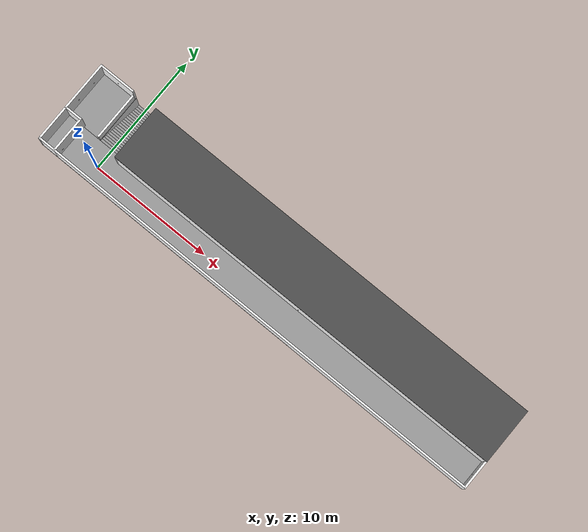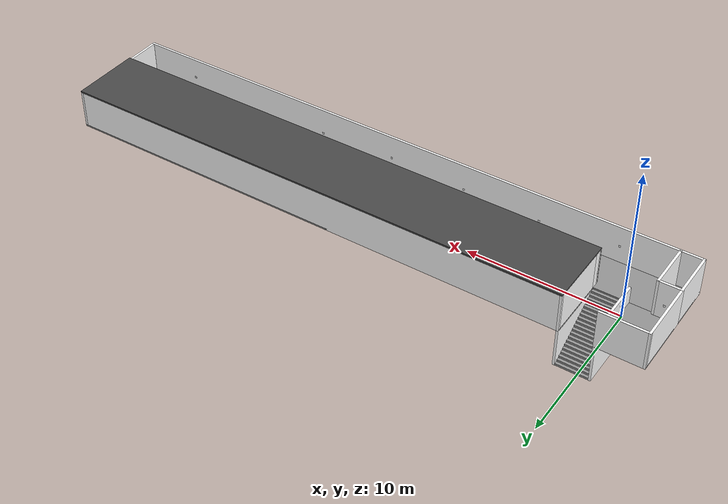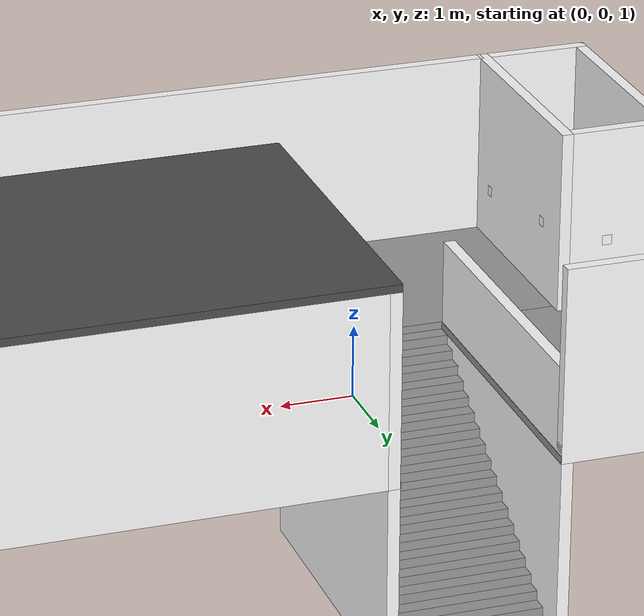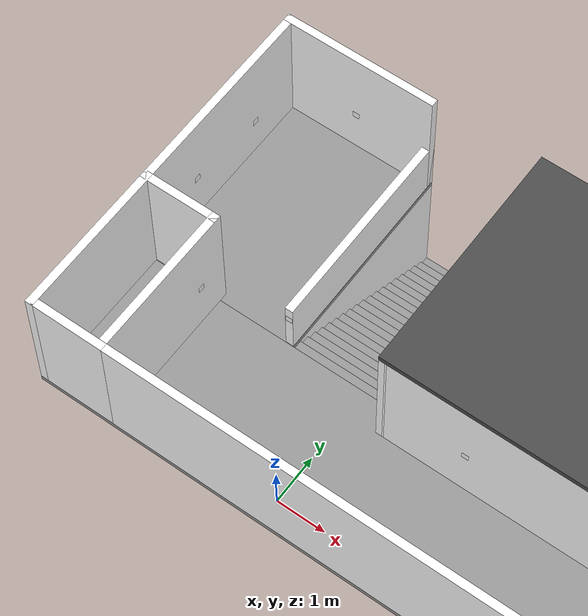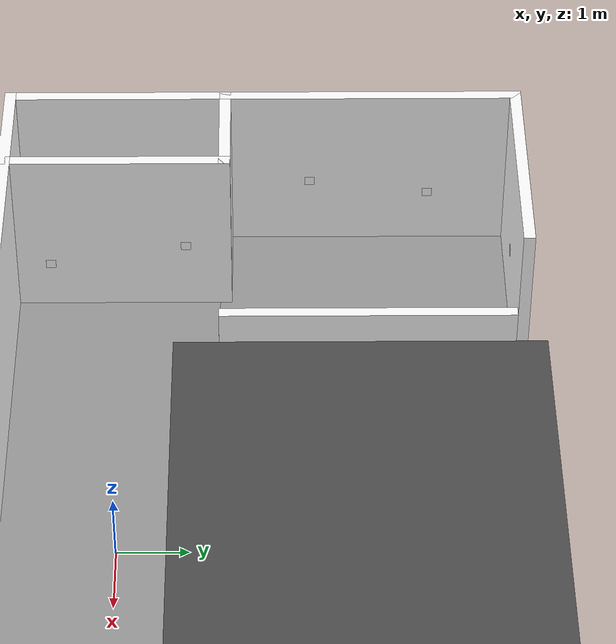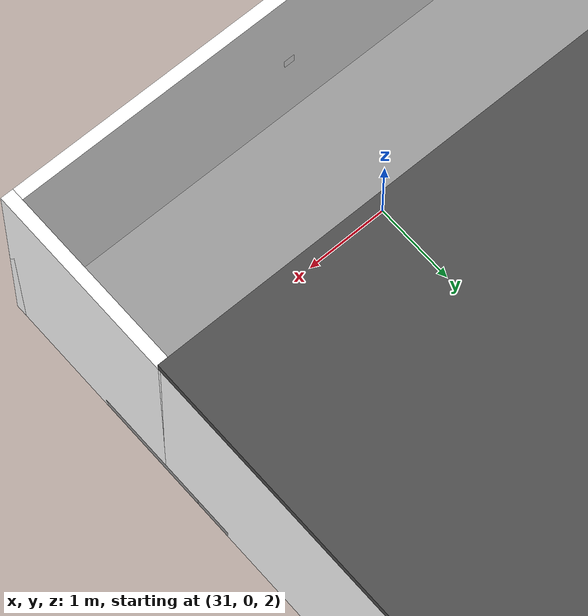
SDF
<?xml version='1.0'?>
<sdf version='1.7'>
  <model name='FRosT_Flur'>
    <pose>15.5 2 0 0 0 1.57</pose>
    <link name='AR_Tag_1'>
      <collision name='AR_Tag_1_Collision'>
        <geometry>
          <box>
            <size>0 0.13 0.13</size>
          </box>
        </geometry>
        <pose>0 0 0 0 -0 0</pose>
      </collision>
      <visual name='AR_Tag_1_Visual'>
        <pose>0 0 0 0 -0 0</pose>
        <geometry>
          <box>
            <size>0 0.13 0.13</size>
          </box>
        </geometry>
        <material>
          <script>
            <name>AR_Tag</name>
          </script>
          <ambient>1 1 1 1</ambient>
        </material>
        <meta>
          <layer>0</layer>
        </meta>
      </visual>
      <pose relative_to="Wall_1">
        0 0.080 1 0 0 1.57
      </pose>
    </link>
    <link name='AR_Tag_2'>
      <collision name='AR_Tag_2_Collision'>
        <geometry>
          <box>
            <size>0 0.13 0.13</size>
          </box>
        </geometry>
        <pose>0 0 0 0 -0 0</pose>
      </collision>
      <visual name='AR_Tag_2_Visual'>
        <pose>0 0 0 0 -0 0</pose>
        <geometry>
          <box>
            <size>0 0.13 0.13</size>
          </box>
        </geometry>
        <material>
          <script>
            <name>AR_Tag</name>
          </script>
          <ambient>1 1 1 1</ambient>
        </material>
        <meta>
          <layer>0</layer>
        </meta>
      </visual>
      <pose relative_to="Wall_1">
        -5 0.080 0.8 0 0 1.57
      </pose>
    </link>
    <link name='AR_Tag_3'>
      <collision name='AR_Tag_3_Collision'>
        <geometry>
          <box>
            <size>0 0.13 0.13</size>
          </box>
        </geometry>
        <pose>0 0 0 0 -0 0</pose>
      </collision>
      <visual name='AR_Tag_3_Visual'>
        <pose>0 0 0 0 -0 0</pose>
        <geometry>
          <box>
            <size>0 0.13 0.13</size>
          </box>
        </geometry>
        <material>
          <script>
            <name>AR_Tag</name>
          </script>
          <ambient>1 1 1 1</ambient>
        </material>
        <meta>
          <layer>0</layer>
        </meta>
      </visual>
      <pose relative_to="Wall_1">
        5 0.080 0.8 0 0 1.57
      </pose>
    </link>
        <link name='AR_Tag_4'>
      <collision name='AR_Tag_4_Collision'>
        <geometry>
          <box>
            <size>0 0.13 0.13</size>
          </box>
        </geometry>
        <pose>0 0 0 0 -0 0</pose>
      </collision>
      <visual name='AR_Tag_4_Visual'>
        <pose>0 0 0 0 -0 0</pose>
        <geometry>
          <box>
            <size>0 0.13 0.13</size>
          </box>
        </geometry>
        <material>
          <script>
            <name>AR_Tag</name>
          </script>
          <ambient>1 1 1 1</ambient>
        </material>
        <meta>
          <layer>0</layer>
        </meta>
      </visual>
      <pose relative_to="Wall_1">
        10 0.080 0.5 0 0 1.57
      </pose>
    </link>
    <link name='AR_Tag_5'>
      <collision name='AR_Tag_5_Collision'>
        <geometry>
          <box>
            <size>0 0.13 0.13</size>
          </box>
        </geometry>
        <pose>0 0 0 0 -0 0</pose>
      </collision>
      <visual name='AR_Tag_5_Visual'>
        <pose>0 0 0 0 -0 0</pose>
        <geometry>
          <box>
            <size>0 0.13 0.13</size>
          </box>
        </geometry>
        <material>
          <script>
            <name>AR_Tag</name>
          </script>
          <ambient>1 1 1 1</ambient>
        </material>
        <meta>
          <layer>0</layer>
        </meta>
      </visual>
      <pose relative_to="Wall_1">
        -10 0.080 0.7 0 0 1.57
      </pose>
    </link>
    <link name='AR_Tag_6'>
      <collision name='AR_Tag_6_Collision'>
        <geometry>
          <box>
            <size>0 0.13 0.13</size>
          </box>
        </geometry>
        <pose>0 0 0 0 -0 0</pose>
      </collision>
      <visual name='AR_Tag_6_Visual'>
        <pose>0 0 0 0 -0 0</pose>
        <geometry>
          <box>
            <size>0 0.13 0.13</size>
          </box>
        </geometry>
        <material>
          <script>
            <name>AR_Tag</name>
          </script>
          <ambient>1 1 1 1</ambient>
        </material>
        <meta>
          <layer>0</layer>
        </meta>
      </visual>
      <pose relative_to="Wall_1">
        -15 0.080 1.2 0 0 1.57
      </pose>
    </link>
    <link name='AR_Tag_7'>
      <collision name='AR_Tag_7_Collision'>
        <geometry>
          <box>
            <size>0 0.13 0.13</size>
          </box>
        </geometry>
        <pose>0 0 0 0 -0 0</pose>
      </collision>
      <visual name='AR_Tag_7_Visual'>
        <pose>0 0 0 0 -0 0</pose>
        <geometry>
          <box>
            <size>0 0.13 0.13</size>
          </box>
        </geometry>
        <material>
          <script>
            <name>AR_Tag</name>
          </script>
          <ambient>1 1 1 1</ambient>
        </material>
        <meta>
          <layer>0</layer>
        </meta>
      </visual>
      <pose relative_to="Wall_1">
        15 0.080 1.2 0 0 1.57
      </pose>
    </link>
    <link name='AR_Tag_8'>
      <collision name='AR_Tag_8_Collision'>
        <geometry>
          <box>
            <size>0 0.13 0.13</size>
          </box>
        </geometry>
        <pose>0 0 0 0 -0 0</pose>
      </collision>
      <visual name='AR_Tag_8_Visual'>
        <pose>0 0 0 0 -0 0</pose>
        <geometry>
          <box>
            <size>0 0.13 0.13</size>
          </box>
        </geometry>
        <material>
          <script>
            <name>AR_Tag</name>
          </script>
          <ambient>1 1 1 1</ambient>
        </material>
        <meta>
          <layer>0</layer>
        </meta>
      </visual>
      <pose relative_to="Wall_2">
        0 0.080 1 0 0 1.57
      </pose>
    </link>
    <link name='AR_Tag_9'>
      <collision name='AR_Tag_9_Collision'>
        <geometry>
          <box>
            <size>0 0.13 0.13</size>
          </box>
        </geometry>
        <pose>0 0 0 0 -0 0</pose>
      </collision>
      <visual name='AR_Tag_9_Visual'>
        <pose>0 0 0 0 -0 0</pose>
        <geometry>
          <box>
            <size>0 0.13 0.13</size>
          </box>
        </geometry>
        <material>
          <script>
            <name>AR_Tag</name>
          </script>
          <ambient>1 1 1 1</ambient>
        </material>
        <meta>
          <layer>0</layer>
        </meta>
      </visual>
      <pose relative_to="Wall_3">
        0 -0.080 1 0 0 1.57
      </pose>
    </link>
    <link name='AR_Tag_10'>
      <collision name='AR_Tag_10_Collision'>
        <geometry>
          <box>
            <size>0 0.13 0.13</size>
          </box>
        </geometry>
        <pose>0 0 0 0 -0 0</pose>
      </collision>
      <visual name='AR_Tag_10_Visual'>
        <pose>0 0 0 0 -0 0</pose>
        <geometry>
          <box>
            <size>0 0.13 0.13</size>
          </box>
        </geometry>
        <material>
          <script>
            <name>AR_Tag</name>
          </script>
          <ambient>1 1 1 1</ambient>
        </material>
        <meta>
          <layer>0</layer>
        </meta>
      </visual>
      <pose relative_to="Wall_3">
        -5 -0.080 0.8 0 0 1.57
      </pose>
    </link>
    <link name='AR_Tag_11'>
      <collision name='AR_Tag_11_Collision'>
        <geometry>
          <box>
            <size>0 0.13 0.13</size>
          </box>
        </geometry>
        <pose>0 0 0 0 -0 0</pose>
      </collision>
      <visual name='AR_Tag_11_Visual'>
        <pose>0 0 0 0 -0 0</pose>
        <geometry>
          <box>
            <size>0 0.13 0.13</size>
          </box>
        </geometry>
        <material>
          <script>
            <name>AR_Tag</name>
          </script>
          <ambient>1 1 1 1</ambient>
        </material>
        <meta>
          <layer>0</layer>
        </meta>
      </visual>
      <pose relative_to="Wall_3">
        5 -0.080 0.8 0 0 1.57
      </pose>
    </link>
        <link name='AR_Tag_12'>
      <collision name='AR_Tag_12_Collision'>
        <geometry>
          <box>
            <size>0 0.13 0.13</size>
          </box>
        </geometry>
        <pose>0 0 0 0 -0 0</pose>
      </collision>
      <visual name='AR_Tag_12_Visual'>
        <pose>0 0 0 0 -0 0</pose>
        <geometry>
          <box>
            <size>0 0.13 0.13</size>
          </box>
        </geometry>
        <material>
          <script>
            <name>AR_Tag</name>
          </script>
          <ambient>1 1 1 1</ambient>
        </material>
        <meta>
          <layer>0</layer>
        </meta>
      </visual>
      <pose relative_to="Wall_3">
        10 -0.080 0.5 0 0 1.57
      </pose>
    </link>
    <link name='AR_Tag_13'>
      <collision name='AR_Tag_13_Collision'>
        <geometry>
          <box>
            <size>0 0.13 0.13</size>
          </box>
        </geometry>
        <pose>0 0 0 0 -0 0</pose>
      </collision>
      <visual name='AR_Tag_13_Visual'>
        <pose>0 0 0 0 -0 0</pose>
        <geometry>
          <box>
            <size>0 0.13 0.13</size>
          </box>
        </geometry>
        <material>
          <script>
            <name>AR_Tag</name>
          </script>
          <ambient>1 1 1 1</ambient>
        </material>
        <meta>
          <layer>0</layer>
        </meta>
      </visual>
      <pose relative_to="Wall_3">
        -10 -0.080 0.7 0 0 1.57
      </pose>
    </link>
    <link name='AR_Tag_14'>
      <collision name='AR_Tag_14_Collision'>
        <geometry>
          <box>
            <size>0 0.13 0.13</size>
          </box>
        </geometry>
        <pose>0 0 0 0 -0 0</pose>
      </collision>
      <visual name='AR_Tag_14_Visual'>
        <pose>0 0 0 0 -0 0</pose>
        <geometry>
          <box>
            <size>0 0.13 0.13</size>
          </box>
        </geometry>
        <material>
          <script>
            <name>AR_Tag</name>
          </script>
          <ambient>1 1 1 1</ambient>
        </material>
        <meta>
          <layer>0</layer>
        </meta>
      </visual>
      <pose relative_to="Wall_3">
        -15 -0.080 1.2 0 0 1.57
      </pose>
    </link>
    <link name='AR_Tag_15'>
      <collision name='AR_Tag_15_Collision'>
        <geometry>
          <box>
            <size>0 0.13 0.13</size>
          </box>
        </geometry>
        <pose>0 0 0 0 -0 0</pose>
      </collision>
      <visual name='AR_Tag_15_Visual'>
        <pose>0 0 0 0 -0 0</pose>
        <geometry>
          <box>
            <size>0 0.13 0.13</size>
          </box>
        </geometry>
        <material>
          <script>
            <name>AR_Tag</name>
          </script>
          <ambient>1 1 1 1</ambient>
        </material>
        <meta>
          <layer>0</layer>
        </meta>
      </visual>
      <pose relative_to="Wall_3">
        15 -0.080 1.2 0 0 1.57
      </pose>
    </link>
    <link name='AR_Tag_16'>
      <collision name='AR_Tag_16_Collision'>
        <geometry>
          <box>
            <size>0 0.13 0.13</size>
          </box>
        </geometry>
        <pose>0 0 0 0 -0 0</pose>
      </collision>
      <visual name='AR_Tag_16_Visual'>
        <pose>0 0 0 0 -0 0</pose>
        <geometry>
          <box>
            <size>0 0.13 0.13</size>
          </box>
        </geometry>
        <material>
          <script>
            <name>AR_Tag</name>
          </script>
          <ambient>1 1 1 1</ambient>
        </material>
        <meta>
          <layer>0</layer>
        </meta>
      </visual>
      <pose relative_to="Wall_4">
        0.2 -0.080 0.9 0 0 1.57
      </pose>
    </link>
    <link name='AR_Tag_17'>
      <collision name='AR_Tag_17_Collision'>
        <geometry>
          <box>
            <size>0 0.13 0.13</size>
          </box>
        </geometry>
        <pose>0 0 0 0 -0 0</pose>
      </collision>
      <visual name='AR_Tag_17_Visual'>
        <pose>0 0 0 0 -0 0</pose>
        <geometry>
          <box>
            <size>0 0.13 0.13</size>
          </box>
        </geometry>
        <material>
          <script>
            <name>AR_Tag</name>
          </script>
          <ambient>1 1 1 1</ambient>
        </material>
        <meta>
          <layer>0</layer>
        </meta>
      </visual>
      <pose relative_to="Wall_5">
        -2.001 0 0.9 0 0 0
      </pose>
    </link>
    <link name='AR_Tag_18'>
      <collision name='AR_Tag_18_Collision'>
        <geometry>
          <box>
            <size>0 0.13 0.13</size>
          </box>
        </geometry>
        <pose>0 0 0 0 -0 0</pose>
      </collision>
      <visual name='AR_Tag_18_Visual'>
        <pose>0 0 0 0 -0 0</pose>
        <geometry>
          <box>
            <size>0 0.13 0.13</size>
          </box>
        </geometry>
        <material>
          <script>
            <name>AR_Tag</name>
          </script>
          <ambient>1 1 1 1</ambient>
        </material>
        <meta>
          <layer>0</layer>
        </meta>
      </visual>
      <pose relative_to="Wall_5">
        -0.8 0.080 0.8 0 0 1.57
      </pose>
    </link>
    <link name='AR_Tag_19'>
      <collision name='AR_Tag_19_Collision'>
        <geometry>
          <box>
            <size>0 0.13 0.13</size>
          </box>
        </geometry>
        <pose>0 0 0 0 -0 0</pose>
      </collision>
      <visual name='AR_Tag_19_Visual'>
        <pose>0 0 0 0 -0 0</pose>
        <geometry>
          <box>
            <size>0 0.13 0.13</size>
          </box>
        </geometry>
        <material>
          <script>
            <name>AR_Tag</name>
          </script>
          <ambient>1 1 1 1</ambient>
        </material>
        <meta>
          <layer>0</layer>
        </meta>
      </visual>
      <pose relative_to="Wall_5">
        0.8 0.080 0.8 0 0 1.57
      </pose>
    </link>
    <link name='AR_Tag_20'>
      <collision name='AR_Tag_20_Collision'>
        <geometry>
          <box>
            <size>0 0.13 0.13</size>
          </box>
        </geometry>
        <pose>0 0 0 0 -0 0</pose>
      </collision>
      <visual name='AR_Tag_20_Visual'>
        <pose>0 0 0 0 -0 0</pose>
        <geometry>
          <box>
            <size>0 0.13 0.13</size>
          </box>
        </geometry>
        <material>
          <script>
            <name>AR_Tag</name>
          </script>
          <ambient>1 1 1 1</ambient>
        </material>
        <meta>
          <layer>0</layer>
        </meta>
      </visual>
      <pose relative_to="Wall_6">
        0 0.080 1 0 0 1.57
      </pose>
    </link>
    <link name='AR_Tag_21'>
      <collision name='AR_Tag_21_Collision'>
        <geometry>
          <box>
            <size>0 0.13 0.13</size>
          </box>
        </geometry>
        <pose>0 0 0 0 -0 0</pose>
      </collision>
      <visual name='AR_Tag_21_Visual'>
        <pose>0 0 0 0 -0 0</pose>
        <geometry>
          <box>
            <size>0 0.13 0.13</size>
          </box>
        </geometry>
        <material>
          <script>
            <name>AR_Tag</name>
          </script>
          <ambient>1 1 1 1</ambient>
        </material>
        <meta>
          <layer>0</layer>
        </meta>
      </visual>
      <pose relative_to="Wall_7">
        0.8 0.080 1.1 0 0 1.57
      </pose>
    </link>
    <link name='AR_Tag_22'>
      <collision name='AR_Tag_22_Collision'>
        <geometry>
          <box>
            <size>0 0.13 0.13</size>
          </box>
        </geometry>
        <pose>0 0 0 0 -0 0</pose>
      </collision>
      <visual name='AR_Tag_22_Visual'>
        <pose>0 0 0 0 -0 0</pose>
        <geometry>
          <box>
            <size>0 0.13 0.13</size>
          </box>
        </geometry>
        <material>
          <script>
            <name>AR_Tag</name>
          </script>
          <ambient>1 1 1 1</ambient>
        </material>
        <meta>
          <layer>0</layer>
        </meta>
      </visual>
      <pose relative_to="Wall_7">
        -0.8 0.080 0.9 0 0 1.57
      </pose>
    </link>
    <link name='AR_Tag_23'>
      <collision name='AR_Tag_23_Collision'>
        <geometry>
          <box>
            <size>0 0.13 0.13</size>
          </box>
        </geometry>
        <pose>0 0 0 0 -0 0</pose>
      </collision>
      <visual name='AR_Tag_23_Visual'>
        <pose>0 0 0 0 -0 0</pose>
        <geometry>
          <box>
            <size>0 0.13 0.13</size>
          </box>
        </geometry>
        <material>
          <script>
            <name>AR_Tag</name>
          </script>
          <ambient>1 1 1 1</ambient>
        </material>
        <meta>
          <layer>0</layer>
        </meta>
      </visual>
      <pose relative_to="Wall_8">
        0.1 0.080 1 0 0 1.57
      </pose>
    </link>
    <link name='AR_Tag_24'>
      <collision name='AR_Tag_24_Collision'>
        <geometry>
          <box>
            <size>0 0.13 0.13</size>
          </box>
        </geometry>
        <pose>0 0 0 0 -0 0</pose>
      </collision>
      <visual name='AR_Tag_24_Visual'>
        <pose>0 0 0 0 -0 0</pose>
        <geometry>
          <box>
            <size>0 0.13 0.13</size>
          </box>
        </geometry>
        <material>
          <script>
            <name>AR_Tag</name>
          </script>
          <ambient>1 1 1 1</ambient>
        </material>
        <meta>
          <layer>0</layer>
        </meta>
      </visual>
      <pose relative_to="Wall_9">
        0.9 0.080 0.8 0 0 1.57
      </pose>
    </link>
    <link name='AR_Tag_25'>
      <collision name='AR_Tag_25_Collision'>
        <geometry>
          <box>
            <size>0 0.13 0.13</size>
          </box>
        </geometry>
        <pose>0 0 0 0 -0 0</pose>
      </collision>
      <visual name='AR_Tag_25_Visual'>
        <pose>0 0 0 0 -0 0</pose>
        <geometry>
          <box>
            <size>0 0.13 0.13</size>
          </box>
        </geometry>
        <material>
          <script>
            <name>AR_Tag</name>
          </script>
          <ambient>1 1 1 1</ambient>
        </material>
        <meta>
          <layer>0</layer>
        </meta>
      </visual>
      <pose relative_to="Wall_9">
        -0.9 0.080 1.1 0 0 1.57
      </pose>
    </link>
    <link name='Wall_1'>
      <collision name='Wall_1_Collision'>
        <geometry>
          <box>
            <size>37 0.15 2.5</size>
          </box>
        </geometry>
        <pose>0 0 1.25 0 -0 0</pose>
      </collision>
      <visual name='Wall_1_Visual'>
        <pose>0 0 1.25 0 -0 0</pose>
        <geometry>
          <box>
            <size>37 0.15 2.5</size>
          </box>
        </geometry>
        <material>
			 <script>
            <name>Wand_beige</name>
          </script>
          <ambient>1 1 1 1</ambient>
        </material>
        <meta>
          <layer>1</layer>
        </meta>
      </visual>
      <pose>-3.35009 -0.675 2.5 0 -0 -1.5708</pose>
    </link>
    <link name='Wall_2'>
      <collision name='Wall_2_Collision'>
        <geometry>
          <box>
            <size>2.5 0.15 2.5</size>
          </box>
        </geometry>
        <pose>0 0 1.25 0 -0 0</pose>
      </collision>
      <visual name='Wall_2_Visual'>
        <pose>0 0 1.25 0 -0 0</pose>
        <geometry>
          <box>
            <size>2.5 0.15 2.5</size>
          </box>
        </geometry>
        <material>
          <script>
            <name>Wand_beige</name>
          </script>
          <ambient>1 1 1 1</ambient>
        </material>
        <meta>
          <layer>1</layer>
        </meta>
      </visual>
      <pose>-2.17509 -19.1 2.5 0 -0 0</pose>
    </link>
    <link name='Wall_3'>
      <collision name='Wall_3_Collision'>
        <geometry>
          <box>
            <size>33.341 0.15 2.5</size>
          </box>
        </geometry>
        <pose>0 0 1.25 0 -0 0</pose>
      </collision>
      <visual name='Wall_3_Visual'>
        <pose>0 0 1.25 0 -0 0</pose>
        <geometry>
          <box>
            <size>33.341 0.15 2.5</size>
          </box>
        </geometry>
        <material>
          <script>
            <name>Wand_beige</name>
          </script>
          <ambient>1 1 1 1</ambient>
        </material>
        <meta>
          <layer>1</layer>
        </meta>
      </visual>
      <pose>-1.00009 -2.5045 2.5 0 -0 -1.5708</pose>
    </link>
    <link name='Wall_4'>
      <collision name='Wall_4_Collision'>
        <geometry>
          <box>
            <size>0.65 0.15 2.5</size>
          </box>
        </geometry>
        <pose>0 0 1.25 0 -0 0</pose>
      </collision>
      <visual name='Wall_4_Visual'>
        <pose>0 0 1.25 0 -0 0</pose>
        <geometry>
          <box>
            <size>0.65 0.15 2.5</size>
          </box>
        </geometry>
        <material>
          <script>
            <name>Wand_beige</name>
          </script>
          <ambient>1 1 1 1</ambient>
        </material>
        <meta>
          <layer>1</layer>
        </meta>
      </visual>
      <pose>-0.749999 14.0908 2.5 0 -0 3.14087</pose>
    </link>
    <link name='Wall_5'>
      <collision name='Wall_5_Collision'>
        <geometry>
          <box>
            <size>4 0.15 1.2</size>
          </box>
        </geometry>
        <pose>0 0 0.6 0 -0 0</pose>
      </collision>
      <visual name='Wall_5_Visual'>
        <pose>0 0 0.6 0 -0 0</pose>
        <geometry>
          <box>
            <size>4 0.15 1.2</size>
          </box>
        </geometry>
        <material>
          <script>
            <name>Wand_beige</name>
          </script>
          <ambient>1 1 1 1</ambient>
        </material>
        <meta>
          <layer>1</layer>
        </meta>
      </visual>
      <pose>1.42491 16.25 2.5 0 -0 0</pose>
    </link>
    <link name='Wall_6'>
      <collision name='Wall_6_Collision'>
        <geometry>
          <box>
            <size>3 0.15 2.5</size>
          </box>
        </geometry>
        <pose>0 0 1.25 0 -0 0</pose>
      </collision>
      <visual name='Wall_6_Visual'>
        <pose>0 0 1.25 0 -0 0</pose>
        <geometry>
          <box>
            <size>3 0.15 2.5</size>
          </box>
        </geometry>
        <material>
          <script>
            <name>Wand_beige</name>
          </script>
          <ambient>1 1 1 1</ambient>
        </material>
        <meta>
          <layer>1</layer>
        </meta>
      </visual>
      <pose>3.34991 17.675 2.5 0 -0 1.5708</pose>
    </link>
    <link name='Wall_7'>
      <collision name='Wall_7_Collision'>
        <geometry>
          <box>
            <size>4 0.15 2.5</size>
          </box>
        </geometry>
        <pose>0 0 1.25 0 -0 0</pose>
      </collision>
      <visual name='Wall_7_Visual'>
        <pose>0 0 1.25 0 -0 0</pose>
        <geometry>
          <box>
            <size>4 0.15 2.5</size>
          </box>
        </geometry>
        <material>
          <script>
            <name>Wand_beige</name>
          </script>
          <ambient>1 1 1 1</ambient>
        </material>
        <meta>
          <layer>1</layer>
        </meta>
      </visual>
      <pose>1.42491 19.1 2.5 0 -0 3.14159</pose>
    </link>
    <link name='Wall_8'>
      <collision name='Wall_8_Collision'>
        <geometry>
          <box>
            <size>1.5 0.15 2.5</size>
          </box>
        </geometry>
        <pose>0 0 1.25 0 -0 0</pose>
      </collision>
      <visual name='Wall_8_Visual'>
        <pose>0 0 1.25 0 -0 0</pose>
        <geometry>
          <box>
            <size>1.5 0.15 2.5</size>
          </box>
        </geometry>
        <material>
          <script>
            <name>Wand_beige</name>
          </script>
          <ambient>1 1 1 1</ambient>
        </material>
        <meta>
          <layer>1</layer>
        </meta>
      </visual>
      <pose>-0.500093 18.425 2.5 0 -0 -1.5708</pose>
    </link>
    <link name='Wall_9'>
      <collision name='Wall_9_Collision'>
        <geometry>
          <box>
            <size>3 0.15 2.5</size>
          </box>
        </geometry>
        <pose>0 0 1.25 0 -0 0</pose>
      </collision>
      <visual name='Wall_9_Visual'>
        <pose>0 0 1.25 0 -0 0</pose>
        <geometry>
          <box>
            <size>3 0.15 2.5</size>
          </box>
        </geometry>
        <material>
          <script>
            <name>Wand_beige</name>
          </script>
          <ambient>1 1 1 1</ambient>
        </material>
        <meta>
          <layer>1</layer>
        </meta>
      </visual>
      <pose>-1.92509 17.75 2.5 0 -0 3.14159</pose>
    </link>
    <link name='Floor_0'>
      <pose>-9e-05 1e-06 2.5 0 -0 0</pose>
      <visual name='Floor_0_Visual_0'>
        <pose>-2.0038 0 0.05 0 -0 0</pose>
        <geometry>
          <box>
            <size>2.84242 38.35 0.1</size>
          </box>
        </geometry>
        <material>
          <script>
            <uri>file://media/materials/scripts/gazebo.material</uri>
            <name>Gazebo/Grey</name>
          </script>
          <ambient>1 1 1 1</ambient>
        </material>
        <meta>
          <layer>1</layer>
        </meta>
      </visual>
      <collision name='Floor_0_Collision_0'>
        <geometry>
          <box>
            <size>2.84242 38.35 0.1</size>
          </box>
        </geometry>
        <pose>-2.0038 0 0.05 0 -0 0</pose>
      </collision>
      <visual name='Floor_0_Visual_1'>
        <pose>1.42121 -2.502 0.05 0 -0 0</pose>
        <geometry>
          <box>
            <size>4.00759 33.346 0.1</size>
          </box>
        </geometry>
        <material>
          <script>
            <uri>file://media/materials/scripts/gazebo.material</uri>
            <name>Gazebo/Grey</name>
          </script>
          <ambient>1 1 1 1</ambient>
        </material>
        <meta>
          <layer>1</layer>
        </meta>
      </visual>
      <collision name='Floor_0_Collision_1'>
        <geometry>
          <box>
            <size>4.00759 33.346 0.1</size>
          </box>
        </geometry>
        <pose>1.42121 -2.502 0.05 0 -0 0</pose>
      </collision>
      <visual name='Floor_0_Visual_3'>
        <pose>1.41741 17.673 0.05 0 -0 0</pose>
        <geometry>
          <box>
            <size>4 3.004 0.1</size>
          </box>
        </geometry>
        <material>
          <script>
            <uri>file://media/materials/scripts/gazebo.material</uri>
            <name>Gazebo/Grey</name>
          </script>
          <ambient>1 1 1 1</ambient>
        </material>
        <meta>
          <layer>1</layer>
        </meta>
      </visual>
      <collision name='Floor_0_Collision_3'>
        <geometry>
          <box>
            <size>4 3.004 0.1</size>
          </box>
        </geometry>
        <pose>1.41741 17.673 0.05 0 -0 0</pose>
      </collision>
    </link>
    <link name='Floor_2'>
      <collision name='Floor_2_Collision'>
        <geometry>
          <box>
            <size>4.5 33.341 0.1</size>
          </box>
        </geometry>
        <pose>0 0 0.05 0 -0 0</pose>
      </collision>
      <visual name='Floor_2_Visual'>
        <pose>0 0 0.05 0 -0 0</pose>
        <geometry>
          <box>
            <size>4.5 33.341 0.1</size>
          </box>
        </geometry>
        <material>
          <script>
            <uri>file://media/materials/scripts/gazebo.material</uri>
            <name>Gazebo/DarkGrey</name>
          </script>
          <ambient>1 1 1 1</ambient>
        </material>
        <meta>
          <layer>2</layer>
        </meta>
      </visual>
      <pose>1.17491 -2.5045 5 0 -0 0</pose>
    </link>
    <link name='Stairs_3'>
      <visual name='Stairs_3_Visual_0'>
        <pose>3.31732 15.171 0.0625 0 0 -1.5708</pose>
        <geometry>
          <box>
            <size>2 0.2 0.125</size>
          </box>
        </geometry>
        <material>
          <script>
            <uri>file://media/materials/scripts/gazebo.material</uri>
            <name>Gazebo/Grey</name>
          </script>
          <ambient>1 1 1 1</ambient>
        </material>
        <meta>
          <layer>0</layer>
        </meta>
      </visual>
      <collision name='Stairs_3_Collision_0'>
        <geometry>
          <box>
            <size>2 0.2 0.125</size>
          </box>
        </geometry>
        <pose>3.31732 15.171 0.0625 0 0 -1.5708</pose>
      </collision>
      <visual name='Stairs_3_Visual_1'>
        <pose>3.11732 15.171 0.1875 0 0 -1.5708</pose>
        <geometry>
          <box>
            <size>2 0.2 0.125</size>
          </box>
        </geometry>
        <material>
          <script>
            <uri>file://media/materials/scripts/gazebo.material</uri>
            <name>Gazebo/Grey</name>
          </script>
          <ambient>1 1 1 1</ambient>
        </material>
        <meta>
          <layer>0</layer>
        </meta>
      </visual>
      <collision name='Stairs_3_Collision_1'>
        <geometry>
          <box>
            <size>2 0.2 0.125</size>
          </box>
        </geometry>
        <pose>3.11732 15.171 0.1875 0 0 -1.5708</pose>
      </collision>
      <visual name='Stairs_3_Visual_2'>
        <pose>2.91732 15.171 0.3125 0 0 -1.5708</pose>
        <geometry>
          <box>
            <size>2 0.2 0.125</size>
          </box>
        </geometry>
        <material>
          <script>
            <uri>file://media/materials/scripts/gazebo.material</uri>
            <name>Gazebo/Grey</name>
          </script>
          <ambient>1 1 1 1</ambient>
        </material>
        <meta>
          <layer>0</layer>
        </meta>
      </visual>
      <collision name='Stairs_3_Collision_2'>
        <geometry>
          <box>
            <size>2 0.2 0.125</size>
          </box>
        </geometry>
        <pose>2.91732 15.171 0.3125 0 0 -1.5708</pose>
      </collision>
      <visual name='Stairs_3_Visual_3'>
        <pose>2.71732 15.171 0.4375 0 0 -1.5708</pose>
        <geometry>
          <box>
            <size>2 0.2 0.125</size>
          </box>
        </geometry>
        <material>
          <script>
            <uri>file://media/materials/scripts/gazebo.material</uri>
            <name>Gazebo/Grey</name>
          </script>
          <ambient>1 1 1 1</ambient>
        </material>
        <meta>
          <layer>0</layer>
        </meta>
      </visual>
      <collision name='Stairs_3_Collision_3'>
        <geometry>
          <box>
            <size>2 0.2 0.125</size>
          </box>
        </geometry>
        <pose>2.71732 15.171 0.4375 0 0 -1.5708</pose>
      </collision>
      <visual name='Stairs_3_Visual_4'>
        <pose>2.51732 15.171 0.5625 0 0 -1.5708</pose>
        <geometry>
          <box>
            <size>2 0.2 0.125</size>
          </box>
        </geometry>
        <material>
          <script>
            <uri>file://media/materials/scripts/gazebo.material</uri>
            <name>Gazebo/Grey</name>
          </script>
          <ambient>1 1 1 1</ambient>
        </material>
        <meta>
          <layer>0</layer>
        </meta>
      </visual>
      <collision name='Stairs_3_Collision_4'>
        <geometry>
          <box>
            <size>2 0.2 0.125</size>
          </box>
        </geometry>
        <pose>2.51732 15.171 0.5625 0 0 -1.5708</pose>
      </collision>
      <visual name='Stairs_3_Visual_5'>
        <pose>2.31732 15.171 0.6875 0 0 -1.5708</pose>
        <geometry>
          <box>
            <size>2 0.2 0.125</size>
          </box>
        </geometry>
        <material>
          <script>
            <uri>file://media/materials/scripts/gazebo.material</uri>
            <name>Gazebo/Grey</name>
          </script>
          <ambient>1 1 1 1</ambient>
        </material>
        <meta>
          <layer>0</layer>
        </meta>
      </visual>
      <collision name='Stairs_3_Collision_5'>
        <geometry>
          <box>
            <size>2 0.2 0.125</size>
          </box>
        </geometry>
        <pose>2.31732 15.171 0.6875 0 0 -1.5708</pose>
      </collision>
      <visual name='Stairs_3_Visual_6'>
        <pose>2.11732 15.171 0.8125 0 0 -1.5708</pose>
        <geometry>
          <box>
            <size>2 0.2 0.125</size>
          </box>
        </geometry>
        <material>
          <script>
            <uri>file://media/materials/scripts/gazebo.material</uri>
            <name>Gazebo/Grey</name>
          </script>
          <ambient>1 1 1 1</ambient>
        </material>
        <meta>
          <layer>0</layer>
        </meta>
      </visual>
      <collision name='Stairs_3_Collision_6'>
        <geometry>
          <box>
            <size>2 0.2 0.125</size>
          </box>
        </geometry>
        <pose>2.11732 15.171 0.8125 0 0 -1.5708</pose>
      </collision>
      <visual name='Stairs_3_Visual_7'>
        <pose>1.91732 15.171 0.9375 0 0 -1.5708</pose>
        <geometry>
          <box>
            <size>2 0.2 0.125</size>
          </box>
        </geometry>
        <material>
          <script>
            <uri>file://media/materials/scripts/gazebo.material</uri>
            <name>Gazebo/Grey</name>
          </script>
          <ambient>1 1 1 1</ambient>
        </material>
        <meta>
          <layer>0</layer>
        </meta>
      </visual>
      <collision name='Stairs_3_Collision_7'>
        <geometry>
          <box>
            <size>2 0.2 0.125</size>
          </box>
        </geometry>
        <pose>1.91732 15.171 0.9375 0 0 -1.5708</pose>
      </collision>
      <visual name='Stairs_3_Visual_8'>
        <pose>1.71732 15.171 1.0625 0 0 -1.5708</pose>
        <geometry>
          <box>
            <size>2 0.2 0.125</size>
          </box>
        </geometry>
        <material>
          <script>
            <uri>file://media/materials/scripts/gazebo.material</uri>
            <name>Gazebo/Grey</name>
          </script>
          <ambient>1 1 1 1</ambient>
        </material>
        <meta>
          <layer>0</layer>
        </meta>
      </visual>
      <collision name='Stairs_3_Collision_8'>
        <geometry>
          <box>
            <size>2 0.2 0.125</size>
          </box>
        </geometry>
        <pose>1.71732 15.171 1.0625 0 0 -1.5708</pose>
      </collision>
      <visual name='Stairs_3_Visual_9'>
        <pose>1.51732 15.171 1.1875 0 0 -1.5708</pose>
        <geometry>
          <box>
            <size>2 0.2 0.125</size>
          </box>
        </geometry>
        <material>
          <script>
            <uri>file://media/materials/scripts/gazebo.material</uri>
            <name>Gazebo/Grey</name>
          </script>
          <ambient>1 1 1 1</ambient>
        </material>
        <meta>
          <layer>0</layer>
        </meta>
      </visual>
      <collision name='Stairs_3_Collision_9'>
        <geometry>
          <box>
            <size>2 0.2 0.125</size>
          </box>
        </geometry>
        <pose>1.51732 15.171 1.1875 0 0 -1.5708</pose>
      </collision>
      <visual name='Stairs_3_Visual_10'>
        <pose>1.31732 15.171 1.3125 0 0 -1.5708</pose>
        <geometry>
          <box>
            <size>2 0.2 0.125</size>
          </box>
        </geometry>
        <material>
          <script>
            <uri>file://media/materials/scripts/gazebo.material</uri>
            <name>Gazebo/Grey</name>
          </script>
          <ambient>1 1 1 1</ambient>
        </material>
        <meta>
          <layer>0</layer>
        </meta>
      </visual>
      <collision name='Stairs_3_Collision_10'>
        <geometry>
          <box>
            <size>2 0.2 0.125</size>
          </box>
        </geometry>
        <pose>1.31732 15.171 1.3125 0 0 -1.5708</pose>
      </collision>
      <visual name='Stairs_3_Visual_11'>
        <pose>1.11732 15.171 1.4375 0 0 -1.5708</pose>
        <geometry>
          <box>
            <size>2 0.2 0.125</size>
          </box>
        </geometry>
        <material>
          <script>
            <uri>file://media/materials/scripts/gazebo.material</uri>
            <name>Gazebo/Grey</name>
          </script>
          <ambient>1 1 1 1</ambient>
        </material>
        <meta>
          <layer>0</layer>
        </meta>
      </visual>
      <collision name='Stairs_3_Collision_11'>
        <geometry>
          <box>
            <size>2 0.2 0.125</size>
          </box>
        </geometry>
        <pose>1.11732 15.171 1.4375 0 0 -1.5708</pose>
      </collision>
      <visual name='Stairs_3_Visual_12'>
        <pose>0.917324 15.171 1.5625 0 0 -1.5708</pose>
        <geometry>
          <box>
            <size>2 0.2 0.125</size>
          </box>
        </geometry>
        <material>
          <script>
            <uri>file://media/materials/scripts/gazebo.material</uri>
            <name>Gazebo/Grey</name>
          </script>
          <ambient>1 1 1 1</ambient>
        </material>
        <meta>
          <layer>0</layer>
        </meta>
      </visual>
      <collision name='Stairs_3_Collision_12'>
        <geometry>
          <box>
            <size>2 0.2 0.125</size>
          </box>
        </geometry>
        <pose>0.917324 15.171 1.5625 0 0 -1.5708</pose>
      </collision>
      <visual name='Stairs_3_Visual_13'>
        <pose>0.717324 15.171 1.6875 0 0 -1.5708</pose>
        <geometry>
          <box>
            <size>2 0.2 0.125</size>
          </box>
        </geometry>
        <material>
          <script>
            <uri>file://media/materials/scripts/gazebo.material</uri>
            <name>Gazebo/Grey</name>
          </script>
          <ambient>1 1 1 1</ambient>
        </material>
        <meta>
          <layer>0</layer>
        </meta>
      </visual>
      <collision name='Stairs_3_Collision_13'>
        <geometry>
          <box>
            <size>2 0.2 0.125</size>
          </box>
        </geometry>
        <pose>0.717324 15.171 1.6875 0 0 -1.5708</pose>
      </collision>
      <visual name='Stairs_3_Visual_14'>
        <pose>0.517324 15.171 1.8125 0 0 -1.5708</pose>
        <geometry>
          <box>
            <size>2 0.2 0.125</size>
          </box>
        </geometry>
        <material>
          <script>
            <uri>file://media/materials/scripts/gazebo.material</uri>
            <name>Gazebo/Grey</name>
          </script>
          <ambient>1 1 1 1</ambient>
        </material>
        <meta>
          <layer>0</layer>
        </meta>
      </visual>
      <collision name='Stairs_3_Collision_14'>
        <geometry>
          <box>
            <size>2 0.2 0.125</size>
          </box>
        </geometry>
        <pose>0.517324 15.171 1.8125 0 0 -1.5708</pose>
      </collision>
      <visual name='Stairs_3_Visual_15'>
        <pose>0.317324 15.171 1.9375 0 0 -1.5708</pose>
        <geometry>
          <box>
            <size>2 0.2 0.125</size>
          </box>
        </geometry>
        <material>
          <script>
            <uri>file://media/materials/scripts/gazebo.material</uri>
            <name>Gazebo/Grey</name>
          </script>
          <ambient>1 1 1 1</ambient>
        </material>
        <meta>
          <layer>0</layer>
        </meta>
      </visual>
      <collision name='Stairs_3_Collision_15'>
        <geometry>
          <box>
            <size>2 0.2 0.125</size>
          </box>
        </geometry>
        <pose>0.317324 15.171 1.9375 0 0 -1.5708</pose>
      </collision>
      <visual name='Stairs_3_Visual_16'>
        <pose>0.117324 15.171 2.0625 0 0 -1.5708</pose>
        <geometry>
          <box>
            <size>2 0.2 0.125</size>
          </box>
        </geometry>
        <material>
          <script>
            <uri>file://media/materials/scripts/gazebo.material</uri>
            <name>Gazebo/Grey</name>
          </script>
          <ambient>1 1 1 1</ambient>
        </material>
        <meta>
          <layer>0</layer>
        </meta>
      </visual>
      <collision name='Stairs_3_Collision_16'>
        <geometry>
          <box>
            <size>2 0.2 0.125</size>
          </box>
        </geometry>
        <pose>0.117324 15.171 2.0625 0 0 -1.5708</pose>
      </collision>
      <visual name='Stairs_3_Visual_17'>
        <pose>-0.082676 15.171 2.1875 0 0 -1.5708</pose>
        <geometry>
          <box>
            <size>2 0.2 0.125</size>
          </box>
        </geometry>
        <material>
          <script>
            <uri>file://media/materials/scripts/gazebo.material</uri>
            <name>Gazebo/Grey</name>
          </script>
          <ambient>1 1 1 1</ambient>
        </material>
        <meta>
          <layer>0</layer>
        </meta>
      </visual>
      <collision name='Stairs_3_Collision_17'>
        <geometry>
          <box>
            <size>2 0.2 0.125</size>
          </box>
        </geometry>
        <pose>-0.082676 15.171 2.1875 0 0 -1.5708</pose>
      </collision>
      <visual name='Stairs_3_Visual_18'>
        <pose>-0.282676 15.171 2.3125 0 0 -1.5708</pose>
        <geometry>
          <box>
            <size>2 0.2 0.125</size>
          </box>
        </geometry>
        <material>
          <script>
            <uri>file://media/materials/scripts/gazebo.material</uri>
            <name>Gazebo/Grey</name>
          </script>
          <ambient>1 1 1 1</ambient>
        </material>
        <meta>
          <layer>0</layer>
        </meta>
      </visual>
      <collision name='Stairs_3_Collision_18'>
        <geometry>
          <box>
            <size>2 0.2 0.125</size>
          </box>
        </geometry>
        <pose>-0.282676 15.171 2.3125 0 0 -1.5708</pose>
      </collision>
      <visual name='Stairs_3_Visual_19'>
        <pose>-0.482676 15.171 2.4375 0 0 -1.5708</pose>
        <geometry>
          <box>
            <size>2 0.2 0.125</size>
          </box>
        </geometry>
        <material>
          <script>
            <uri>file://media/materials/scripts/gazebo.material</uri>
            <name>Gazebo/Grey</name>
          </script>
          <ambient>1 1 1 1</ambient>
        </material>
        <meta>
          <layer>0</layer>
        </meta>
      </visual>
      <collision name='Stairs_3_Collision_19'>
        <geometry>
          <box>
            <size>2 0.2 0.125</size>
          </box>
        </geometry>
        <pose>-0.482676 15.171 2.4375 0 0 -1.5708</pose>
      </collision>
    </link>
    <link name='Wall_91'>
      <collision name='Wall_91_Collision'>
        <geometry>
          <box>
            <size>4 0.15 2.5</size>
          </box>
        </geometry>
        <pose>0 0 1.25 0 -0 0</pose>
      </collision>
      <visual name='Wall_91_Visual'>
        <pose>0 0 1.25 0 -0 0</pose>
        <geometry>
          <box>
            <size>4 0.15 2.5</size>
          </box>
        </geometry>
        <material>
          <script>
            <name>Wand_beige</name>
          </script>
          <ambient>1 1 1 1</ambient>
        </material>
        <meta>
          <layer>0</layer>
        </meta>
      </visual>
      <pose>1.4251 16.2503 0 0 -0 0</pose>
    </link>
    <link name='Wall_20'>
      <collision name='Wall_20_Collision'>
        <geometry>
          <box>
            <size>33.341 0.15 0</size>
          </box>
        </geometry>
        <pose>0 0 0 0 -0 0</pose>
      </collision>
      <visual name='Wall_20_Visual'>
        <pose>0 0 0 0 -0 0</pose>
        <geometry>
          <box>
            <size>33.341 0.15 0</size>
          </box>
        </geometry>
        <material>
          <script>
            <name>Wand_beige</name>
          </script>
          <ambient>1 1 1 1</ambient>
        </material>
        <meta>
          <layer>2</layer>
        </meta>
      </visual>
      <pose>-1.00009 -2.5045 5 0 -0 -1.5708</pose>
    </link>
    <link name='Wall_26'>
      <collision name='Wall_26_Collision'>
        <geometry>
          <box>
            <size>33.341 0.15 2.5</size>
          </box>
        </geometry>
        <pose>0 0 1.25 0 -0 0</pose>
      </collision>
      <visual name='Wall_26_Visual'>
        <pose>0 0 1.25 0 -0 0</pose>
        <geometry>
          <box>
            <size>33.341 0.15 2.5</size>
          </box>
        </geometry>
        <material>
          <script>
            <name>Wand_beige</name>
          </script>
          <ambient>1 1 1 1</ambient>
        </material>
        <meta>
          <layer>1</layer>
        </meta>
      </visual>
      <pose>3.34991 -2.5045 2.5 0 -0 -1.5708</pose>
    </link>
    <link name='Wall_28'>
      <collision name='Wall_28_Collision'>
        <geometry>
          <box>
            <size>4.5 0.15 2.5</size>
          </box>
        </geometry>
        <pose>0 0 1.25 0 -0 0</pose>
      </collision>
      <visual name='Wall_28_Visual'>
        <pose>0 0 1.25 0 -0 0</pose>
        <geometry>
          <box>
            <size>4.5 0.15 2.5</size>
          </box>
        </geometry>
        <material>
          <script>
            <name>Wand_beige</name>
          </script>
          <ambient>1 1 1 1</ambient>
        </material>
        <meta>
          <layer>1</layer>
        </meta>
      </visual>
      <pose>1.17491 -19.1 2.5 0 -0 0</pose>
    </link>
    <link name='Wall_92'>
      <collision name='Wall_92_Collision'>
        <geometry>
          <box>
            <size>4 0.15 2.5</size>
          </box>
        </geometry>
        <pose>0 0 1.25 0 -0 0</pose>
      </collision>
      <visual name='Wall_92_Visual'>
        <pose>0 0 1.25 0 -0 0</pose>
        <geometry>
          <box>
            <size>4 0.15 2.5</size>
          </box>
        </geometry>
        <material>
          <script>
            <name>Wand_beige</name>
          </script>
          <ambient>1 1 1 1</ambient>
        </material>
        <meta>
          <layer>0</layer>
        </meta>
      </visual>
      <pose>1.4251 14.0906 0 0 -0 0</pose>
    </link>
    <link name='Wall_30'>
      <collision name='Wall_30_Collision'>
        <geometry>
          <box>
            <size>3 0.15 2.5</size>
          </box>
        </geometry>
        <pose>0 0 1.25 0 -0 0</pose>
      </collision>
      <visual name='Wall_30_Visual'>
        <pose>0 0 1.25 0 -0 0</pose>
        <geometry>
          <box>
            <size>3 0.15 2.5</size>
          </box>
        </geometry>
        <material>
          <script>
            <name>Wand_beige</name>
          </script>
          <ambient>1 1 1 1</ambient>
        </material>
        <meta>
          <layer>1</layer>
        </meta>
      </visual>
      <pose>-1.92509 19.1 2.5 0 -0 3.14159</pose>
    </link>
    <link name='Wall_35'>
      <collision name='Wall_35_Collision'>
        <geometry>
          <box>
            <size>1.5 0.15 2.5</size>
          </box>
        </geometry>
        <pose>0 0 1.25 0 -0 0</pose>
      </collision>
      <visual name='Wall_35_Visual'>
        <pose>0 0 1.25 0 -0 0</pose>
        <geometry>
          <box>
            <size>1.5 0.15 2.5</size>
          </box>
        </geometry>
        <material>
          <script>
            <name>Wand_beige</name>
          </script>
          <ambient>1 1 1 1</ambient>
        </material>
        <meta>
          <layer>1</layer>
        </meta>
      </visual>
      <pose>-3.35009 18.425 2.5 0 -0 -1.5708</pose>
    </link>
    <link name='Wall_52'>
      <collision name='Wall_52_Collision'>
        <geometry>
          <box>
            <size>3.99981 0.15 0</size>
          </box>
        </geometry>
        <pose>0 0 0 0 -0 0</pose>
      </collision>
      <visual name='Wall_52_Visual'>
        <pose>0 0 0 0 -0 0</pose>
        <geometry>
          <box>
            <size>3.99981 0.15 0</size>
          </box>
        </geometry>
        <material>
          <script>
            <name>Wand_beige</name>
          </script>
          <ambient>1 1 1 1</ambient>
        </material>
        <meta>
          <layer>2</layer>
        </meta>
      </visual>
      <pose>1.42491 14.091 5 0 -0 0</pose>
    </link>
    <link name='Wall_58'>
      <collision name='Wall_58_Collision'>
        <geometry>
          <box>
            <size>0.650189 0.15 0</size>
          </box>
        </geometry>
        <pose>0 0 0 0 -0 0</pose>
      </collision>
      <visual name='Wall_58_Visual'>
        <pose>0 0 0 0 -0 0</pose>
        <geometry>
          <box>
            <size>0.650189 0.15 0</size>
          </box>
        </geometry>
        <material>
          <script>
            <name>Wand_beige</name>
          </script>
          <ambient>1 1 1 1</ambient>
        </material>
        <meta>
          <layer>2</layer>
        </meta>
      </visual>
      <pose>-0.750093 14.091 5 0 -0 3.14159</pose>
    </link>
    <link name='Wall_93'>
      <collision name='Wall_93_Collision'>
        <geometry>
          <box>
            <size>4 0.15 2.5</size>
          </box>
        </geometry>
        <pose>0 0 1.25 0 -0 0</pose>
      </collision>
      <visual name='Wall_93_Visual'>
        <pose>0 0 1.25 0 -0 0</pose>
        <geometry>
          <box>
            <size>4 0.15 2.5</size>
          </box>
        </geometry>
        <material>
          <script>
            <name>Wand_beige</name>
          </script>
          <ambient>1 1 1 1</ambient>
        </material>
        <meta>
          <layer>1</layer>
        </meta>
      </visual>
      <pose>1.425 14.0908 2.5 0 -0 9.3e-05</pose>
    </link>
    <link name='Wall_61'>
      <collision name='Wall_61_Collision'>
        <geometry>
          <box>
            <size>33.341 0.15 0</size>
          </box>
        </geometry>
        <pose>0 0 0 0 -0 0</pose>
      </collision>
      <visual name='Wall_61_Visual'>
        <pose>0 0 0 0 -0 0</pose>
        <geometry>
          <box>
            <size>33.341 0.15 0</size>
          </box>
        </geometry>
        <material>
          <script>
            <name>Wand_beige</name>
          </script>
          <ambient>1 1 1 1</ambient>
        </material>
        <meta>
          <layer>2</layer>
        </meta>
      </visual>
      <pose>3.34991 -2.5045 5 0 -0 -1.5708</pose>
    </link>
    <link name='Wall_62'>
      <collision name='Wall_62_Collision'>
        <geometry>
          <box>
            <size>4.5 0.15 0</size>
          </box>
        </geometry>
        <pose>0 0 0 0 -0 0</pose>
      </collision>
      <visual name='Wall_62_Visual'>
        <pose>0 0 0 0 -0 0</pose>
        <geometry>
          <box>
            <size>4.5 0.15 0</size>
          </box>
        </geometry>
        <material>
          <script>
            <name>Wand_beige</name>
          </script>
          <ambient>1 1 1 1</ambient>
        </material>
        <meta>
          <layer>2</layer>
        </meta>
      </visual>
      <pose>1.17491 -19.1 5 0 -0 0</pose>
    </link>
    <static>1</static>
  </model>
</sdf>
